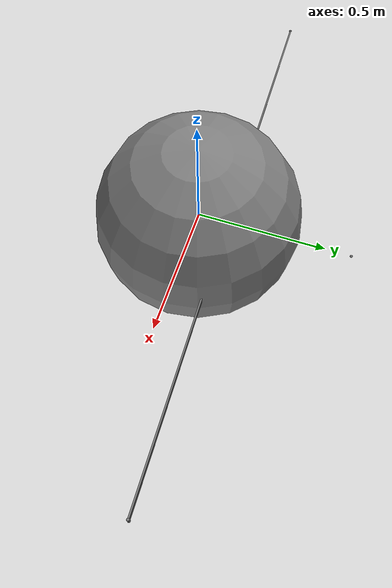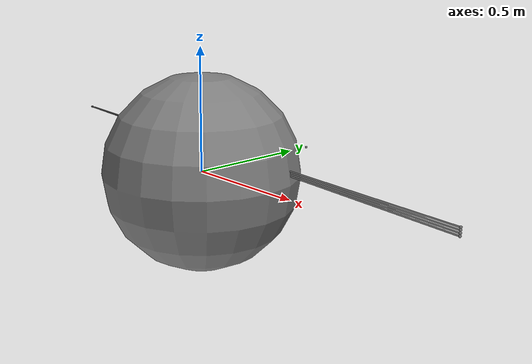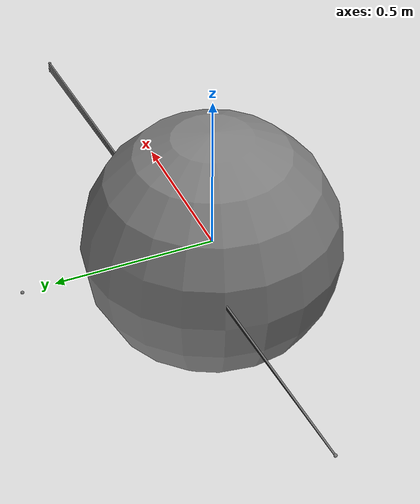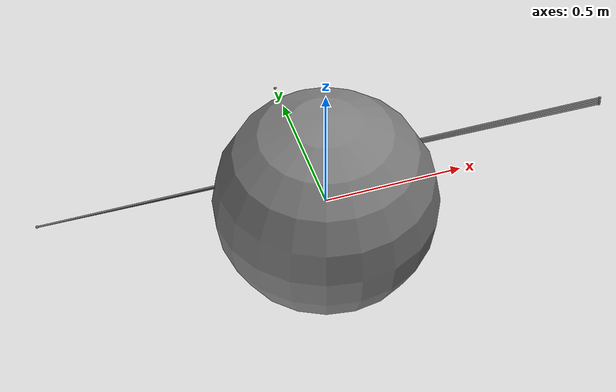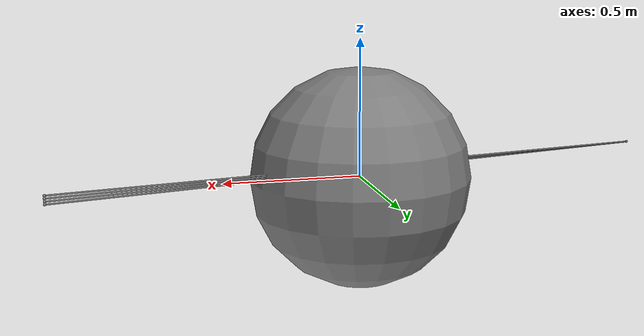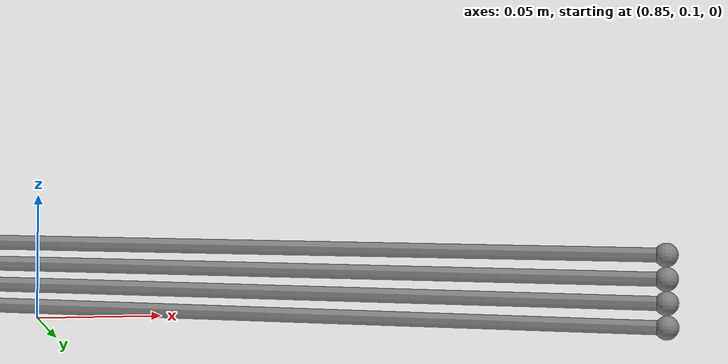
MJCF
<mujoco><compiler angle="radian"/><option timestep=".001" gravity="0 0 0"><flag constraint="disable"/></option><worldbody><geom name="wrap" type="sphere" size=".4" contype="0" conaffinity="0"/><site name="start" pos="-1 .1 .1"/><site name="side" pos="0 .6 0"/><body pos="1 .1 0.0"><joint type="slide" axis="0 1 0" damping=".03" armature=".1"/><joint axis="0 0 1" armature=".1"/><inertial pos=".1 0 .05" mass="1.4" diaginertia=".2 .3 .4"/><site name="end0" pos=".1 .05 0"/></body><body pos="1 .1 0.01"><joint type="slide" axis="0 1 0" damping=".03" armature=".1"/><joint axis="0 0 1" armature=".1"/><inertial pos=".1 0 .05" mass="1.4" diaginertia=".2 .3 .4"/><site name="end1" pos=".1 .05 0"/></body><body pos="1 .1 0.02"><joint type="slide" axis="0 1 0" damping=".03" armature=".1"/><joint axis="0 0 1" armature=".1"/><inertial pos=".1 0 .05" mass="1.4" diaginertia=".2 .3 .4"/><site name="end2" pos=".1 .05 0"/></body><body pos="1 .1 0.03"><joint type="slide" axis="0 1 0" damping=".03" armature=".1"/><joint axis="0 0 1" armature=".1"/><inertial pos=".1 0 .05" mass="1.4" diaginertia=".2 .3 .4"/><site name="end3" pos=".1 .05 0"/></body></worldbody><tendon><spatial stiffness=".2" damping=".01" springlength="1.4 1.6"><site site="start"/><geom geom="wrap" sidesite="side"/><site site="end0"/></spatial><spatial stiffness=".2" damping=".01" springlength="1.4 1.6"><site site="start"/><geom geom="wrap" sidesite="side"/><site site="end1"/></spatial><spatial stiffness=".2" damping=".01" springlength="1.4 1.6"><site site="start"/><geom geom="wrap" sidesite="side"/><site site="end2"/></spatial><spatial stiffness=".2" damping=".01" springlength="1.4 1.6"><site site="start"/><geom geom="wrap" sidesite="side"/><site site="end3"/></spatial></tendon></mujoco>
